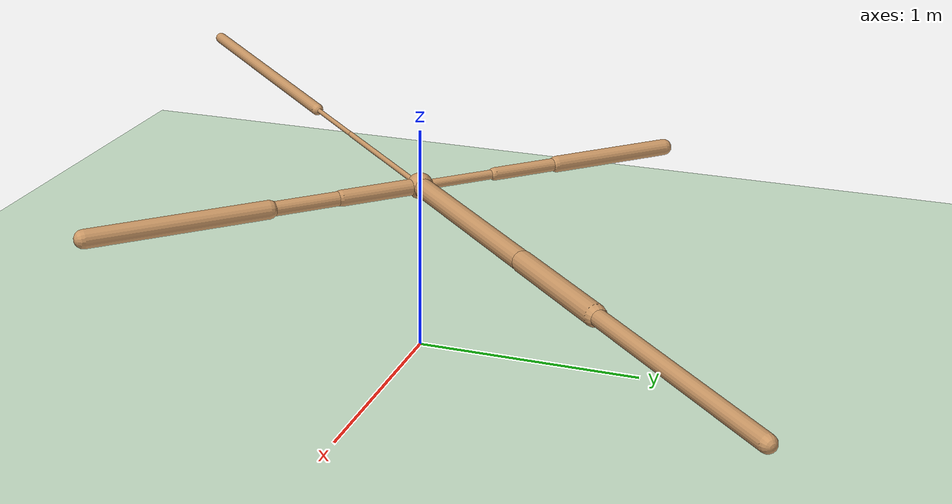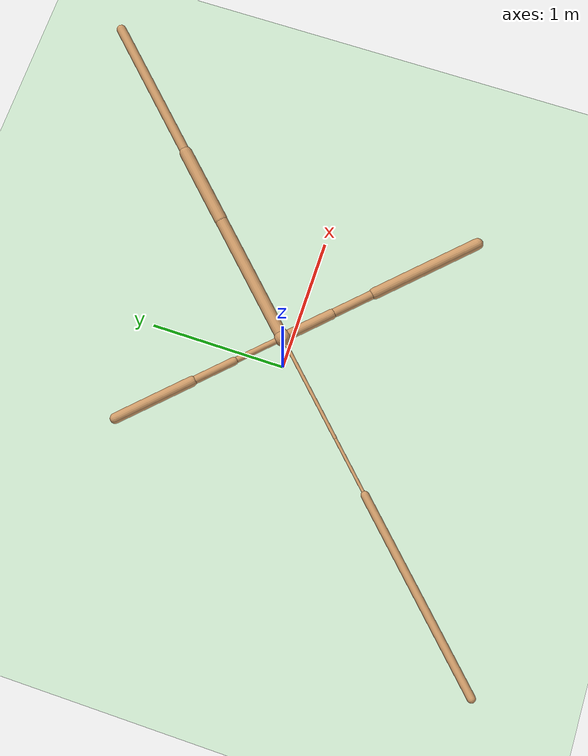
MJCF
<mujoco model="ant">
  <compiler angle="degree" coordinate="local" inertiafromgeom="true" />
  <option integrator="RK4" timestep="0.01" />
  <custom>
    <numeric data="0.0 0.0 0.55 1.0 0.0 0.0 0.0 0.0 1.0 0.0 -1.0 0.0 -1.0 0.0 1.0" name="init_qpos" />
  </custom>
  <default>
    <joint armature="1" damping="1" limited="true" />
    <geom conaffinity="0" condim="3" density="5.0" friction="1 0.5 0.5" margin="0.01" rgba="0.8 0.6 0.4 1" />
  </default>
  <asset>
    <texture builtin="gradient" height="100" rgb1="1 1 1" rgb2="0 0 0" type="skybox" width="100" />
    <texture builtin="flat" height="1278" mark="cross" markrgb="1 1 1" name="texgeom" random="0.01" rgb1="0.8 0.6 0.4" rgb2="0.8 0.6 0.4" type="cube" width="127" />
    <texture builtin="checker" height="100" name="texplane" rgb1="0 0 0" rgb2="0.8 0.8 0.8" type="2d" width="100" />
    <material name="MatPlane" reflectance="0.5" shininess="1" specular="1" texrepeat="60 60" texture="texplane" />
    <material name="geom" texture="texgeom" texuniform="true" />
  </asset>
  <worldbody>
    <light cutoff="100" diffuse="1 1 1" dir="-0 0 -1.3" directional="true" exponent="1" pos="0 0 1.3" specular=".1 .1 .1" />
    <geom conaffinity="1" condim="3" material="MatPlane" name="floor" pos="0 0 0" rgba="0.8 0.9 0.8 1" size="40 40 40" type="plane" />
    <body name="torso" pos="0 0 0.75">
      <camera name="track" mode="trackcom" pos="0 -11 5" xyaxes="1 0 0 0 0.5 1" />
      <geom name="torso_geom" pos="0 0 0" size="0.05744481831789017" type="sphere" />
      <joint armature="0" damping="0" limited="false" margin="0.01" name="root" pos="0 0 0" type="free" />
      <body name="front_left_leg" pos="0 0 0">
        <geom fromto="0 0 0 0.6680964231491089 0.6680964231491089 0" name="aux_1_geom" size="0.043256182223558426" type="capsule" />
        <body name="aux_1" pos="0.6680964231491089 0.6680964231491089 0">
          <joint axis="0 0 1" name="hip_1" pos="0.0 0.0 0.0" range="-30 30" type="hinge" />
          <geom fromto="0 0 0 0.400127112865448 0.400127112865448 0" name="left_leg_geom" size="0.04517798125743866" type="capsule" />
          <body name="left_leg_geom_aux" pos="0.400127112865448 0.400127112865448 0">
            <joint axis="-1 1 0" name="ankle_1" pos="0.0 0.0 0.0" range="30 70" type="hinge" />
            <geom fromto="0 0 0 0.7700557112693787 0.7700557112693787 0" name="left_ankle_geom" size="0.03442857041954994" type="capsule" />
          </body>
        </body>
      </body>
      <body name="front_right_leg" pos="0 0 0">
        <geom fromto="0 0 0 -0.2542478144168854 0.2542478144168854 0" name="aux_2_geom" size="0.020840156823396683" type="capsule" />
        <body name="aux_2" pos="-0.2542478144168854 0.2542478144168854 0">
          <joint axis="0 0 1" name="hip_2" pos="0.0 0.0 0.0" range="-30 30" type="hinge" />
          <geom fromto="0 0 0 -0.21840950846672058 0.21840950846672058 0" name="right_leg_geom" size="0.028553588315844536" type="capsule" />
          <body name="right_leg_geom_aux" pos="-0.21840950846672058 0.21840950846672058 0">
            <joint axis="1 1 0" name="ankle_2" pos="0.0 0.0 0.0" range="-70 -30" type="hinge" />
            <geom fromto="0 0 0 -0.39288330078125 0.39288330078125 0" name="right_ankle_geom" size="0.03621517866849899" type="capsule" />
          </body>
        </body>
      </body>
      <body name="back_leg" pos="0 0 0">
        <geom fromto="0 0 0 -0.5391823649406433 -0.5391823649406433 0" name="aux_3_geom" size="0.01186678372323513" type="capsule" />
        <body name="aux_3" pos="-0.5391823649406433 -0.5391823649406433 0">
          <joint axis="0 0 1" name="hip_3" pos="0.0 0.0 0.0" range="-30 30" type="hinge" />
          <geom fromto="0 0 0 -0.29518210887908936 -0.29518210887908936 0" name="back_leg_geom" size="0.01081943977624178" type="capsule" />
          <body name="back_leg_geom_aux" pos="-0.29518210887908936 -0.29518210887908936 0">
            <joint axis="-1 1 0" name="ankle_3" pos="0.0 0.0 0.0" range="-70 -30" type="hinge" />
            <geom fromto="0 0 0 -0.9897294044494629 -0.9897294044494629 0" name="third_ankle_geom" size="0.02785487473011017" type="capsule" />
          </body>
        </body>
      </body>
      <body name="right_back_leg" pos="0 0 0">
        <geom fromto="0 0 0 0.26021188497543335 -0.26021188497543335 0" name="aux_4_geom" size="0.03567853569984436" type="capsule" />
        <body name="aux_4" pos="0.26021188497543335 -0.26021188497543335 0">
          <joint axis="0 0 1" name="hip_4" pos="0.0 0.0 0.0" range="-30 30" type="hinge" />
          <geom fromto="0 0 0 0.2312491238117218 -0.2312491238117218 0" name="rightback_leg_geom" size="0.0316300168633461" type="capsule" />
          <body name="rightback_leg_geom_aux" pos="0.2312491238117218 -0.2312491238117218 0">
            <joint axis="1 1 0" name="ankle_4" pos="0.0 0.0 0.0" range="30 70" type="hinge" />
            <geom fromto="0 0 0 0.5609321594238281 -0.5609321594238281 0" name="fourth_ankle_geom" size="0.04063764214515686" type="capsule" />
          </body>
        </body>
      </body>
    </body>
  </worldbody>
  <actuator>
    <motor ctrllimited="true" ctrlrange="-1.0 1.0" joint="hip_4" gear="150" />
    <motor ctrllimited="true" ctrlrange="-1.0 1.0" joint="ankle_4" gear="150" />
    <motor ctrllimited="true" ctrlrange="-1.0 1.0" joint="hip_1" gear="150" />
    <motor ctrllimited="true" ctrlrange="-1.0 1.0" joint="ankle_1" gear="150" />
    <motor ctrllimited="true" ctrlrange="-1.0 1.0" joint="hip_2" gear="150" />
    <motor ctrllimited="true" ctrlrange="-1.0 1.0" joint="ankle_2" gear="150" />
    <motor ctrllimited="true" ctrlrange="-1.0 1.0" joint="hip_3" gear="150" />
    <motor ctrllimited="true" ctrlrange="-1.0 1.0" joint="ankle_3" gear="150" />
  </actuator>
</mujoco>
